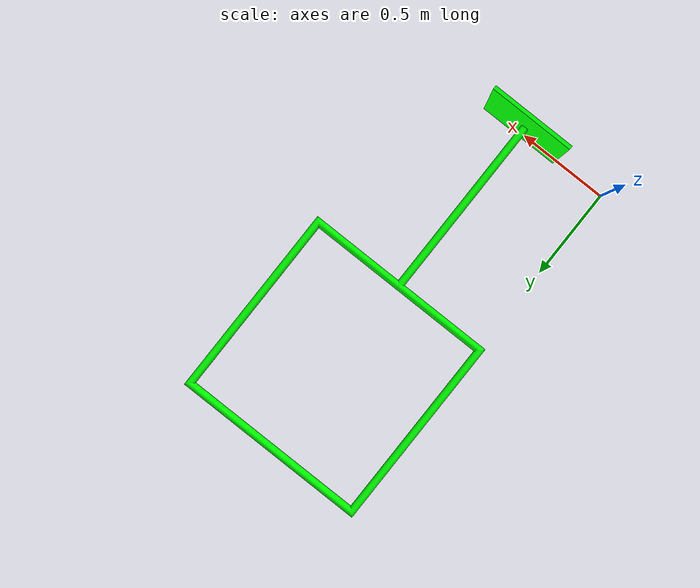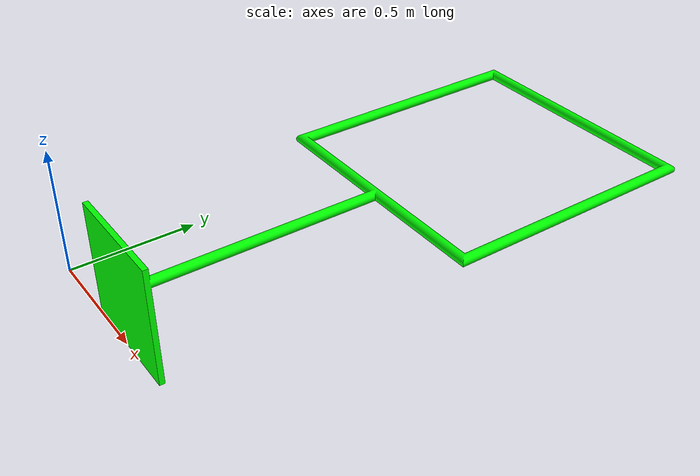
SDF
<?xml version="1.0"?>
<sdf version="1.9">
  <model name="1.0window">
    <static>true</static>
    <link name="link">
      <collision name="collision">
        <geometry>
          <mesh>
            <uri>model://1.0window/meshes/1.0tunnel.dae</uri>
            <scale>0.001 0.001 0.001</scale>
          </mesh>
        </geometry>
      </collision>

      <visual name="visual">
        <geometry>
          <mesh>
            <uri>model://1.0window/meshes/1.0tunnel.dae</uri>
            <scale>0.001 0.001 0.001</scale>
          </mesh>
        </geometry>
        <material>
          <ambient>0 1 0 1</ambient>
          <diffuse>0 1 0 1</diffuse>
          <specular>0.1 0.1 0.1 1</specular>
        </material>
      </visual>
    </link>
  </model>
</sdf>
